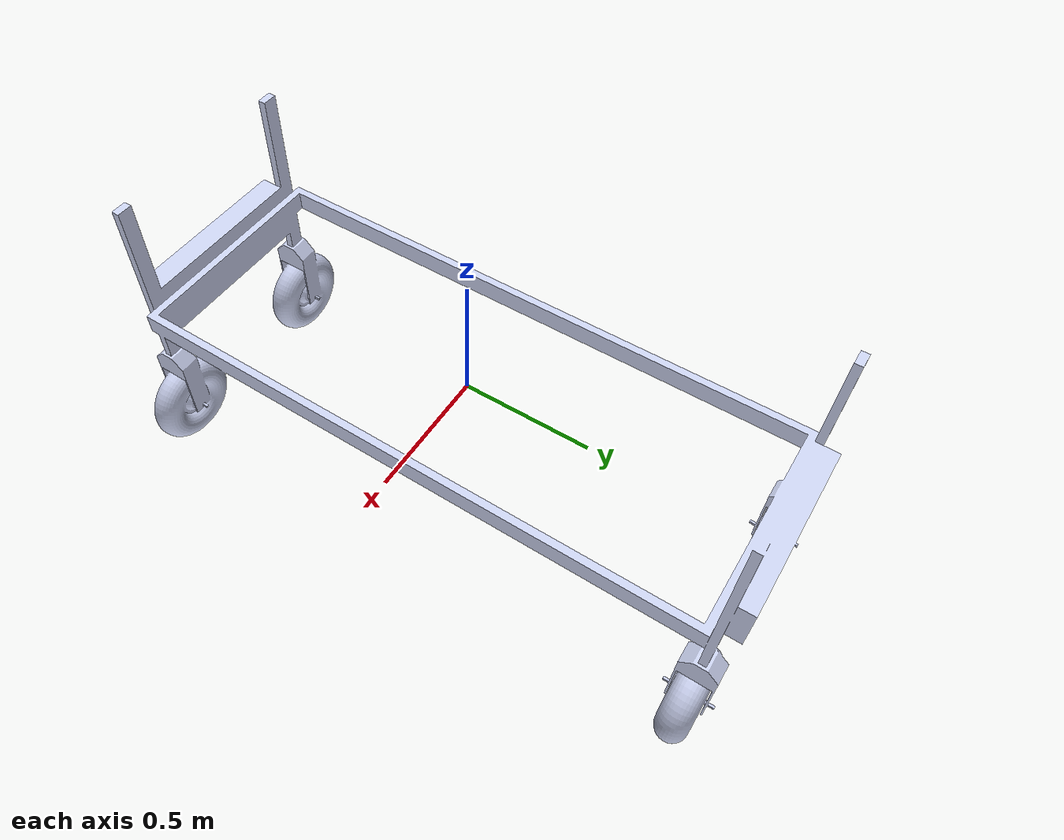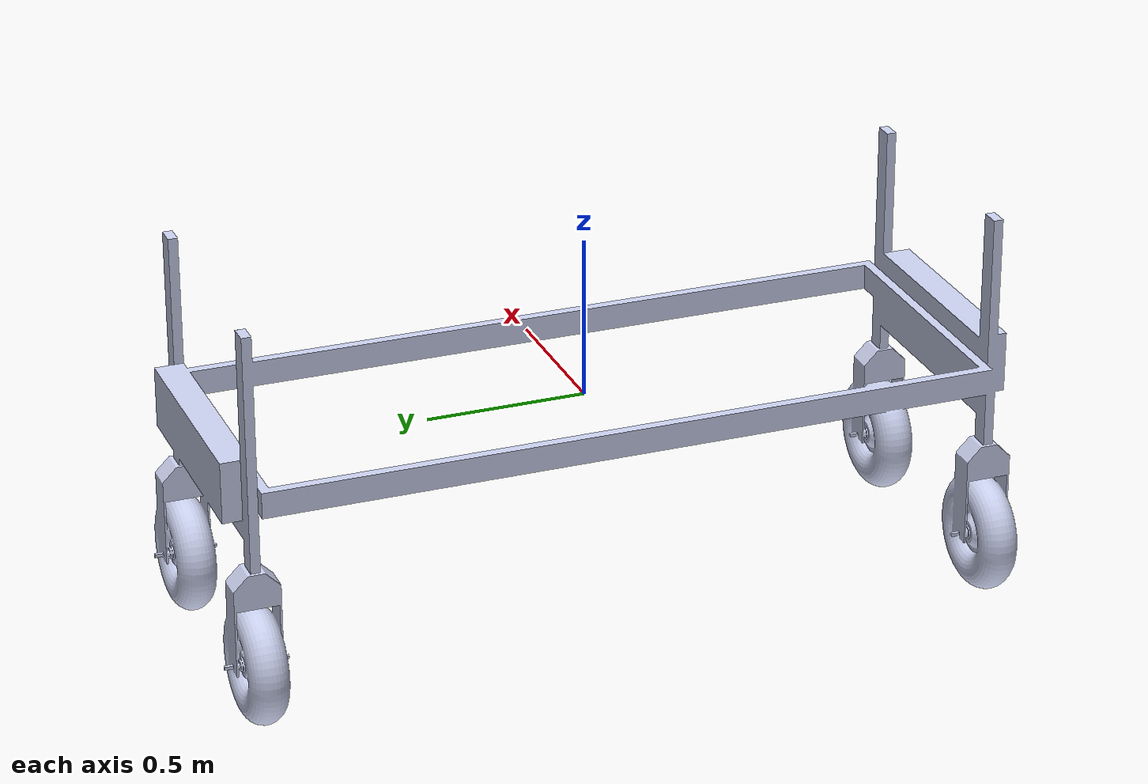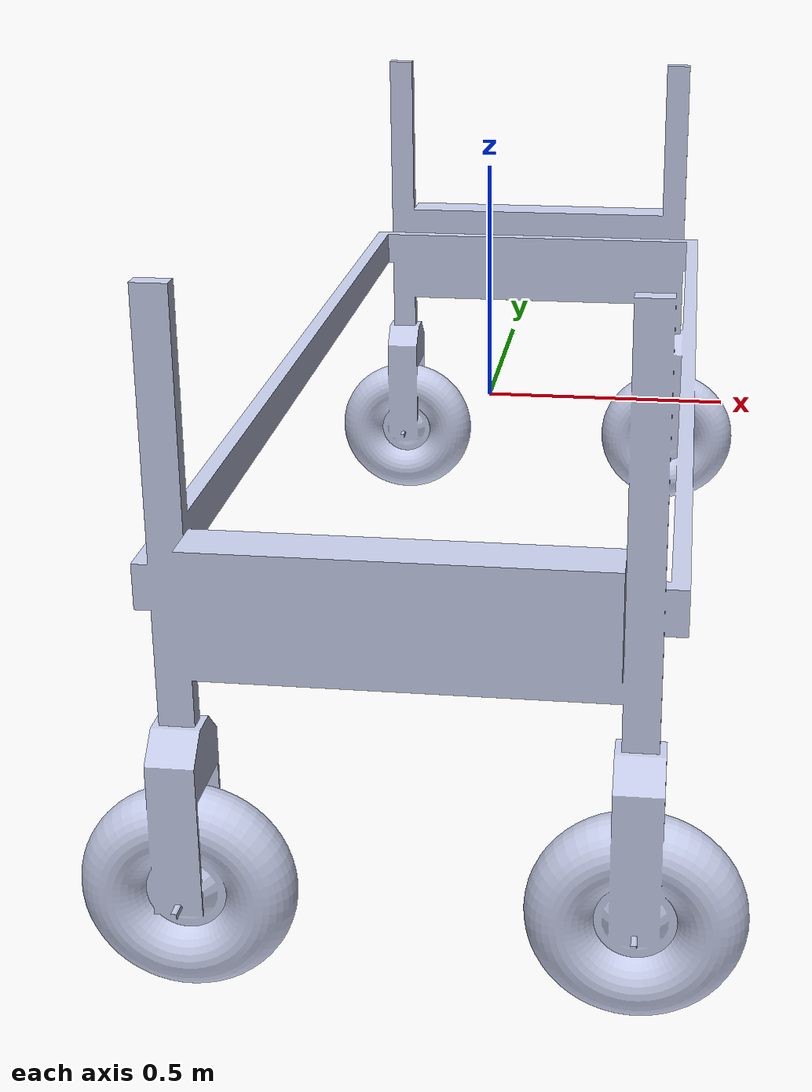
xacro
<?xml version="1.0" encoding="utf-8"?>
<robot
  name="aug_2024_bot">

  <material name="white">
    <color rgba="1 1 1 1"/>
  </material>

  <material name="black">
    <color rgba="0 0 0 1"/>
  </material>

  <material name="red">
    <color rgba="1 0 0 1"/>
  </material>

  <link name="base_link">
  </link>

  <joint name="chassis_joint" type="fixed">
    <origin
      xyz="0 0 0"
      rpy="0 0 0" />
    <parent
      link="base_link" />
    <child
      link="chassis_link" />
    <axis
      xyz="0 0 0" />
  </joint>

  <link name="chassis_link">
    <inertial>
      <origin
        xyz="8.8818E-16 -0.00019873 -0.21905"
        rpy="0 0 0" />
      <mass
        value="97.07" />
      <inertia
        ixx="63.032"
        ixy="2.6923E-13"
        ixz="5.5437E-14"
        iyy="6.512"
        iyz="-1.4703E-14"
        izz="66.796" />
    </inertial>
    <visual>
      <origin
        xyz="0 0 0"
        rpy="0 0 0" />
      <geometry>
        <mesh
          filename="file://$(find rowbot)/description/meshes/chassis_link.STL" />
      </geometry>
      <material
        name="">
        <color
          rgba="0.79216 0.81961 0.93333 1" />
      </material>
    </visual>
    <collision>
      <origin
        xyz="0 0 0"
        rpy="0 0 0" />
      <geometry>
        <mesh
          filename="file://$(find rowbot)/description/meshes/chassis_link.STL" />
      </geometry>
    </collision>
  </link>

  <gazebo reference="chassis_link">
    <material>Gazebo/White</material>
  </gazebo>

  <link name="front_left_wheel_link">
    <inertial>
      <origin
        xyz="1.4211E-14 -0.00042803 1.8208E-14"
        rpy="0 0 0" />
      <mass
        value="11.267" />
      <inertia
        ixx="0.10331"
        ixy="-2.557E-21"
        ixz="1.8542E-22"
        iyy="0.18708"
        iyz="2.8219E-16"
        izz="0.10331" />
    </inertial>
    <visual>
      <origin
        xyz="0 0 0"
        rpy="0 0 0" />
      <geometry>
        <mesh
          filename="file://$(find rowbot)/description/meshes/front_left_wheel_link.STL" />
      </geometry>
      <material
        name="">
        <color
          rgba="0.29804 0.29804 0.29804 1" />
      </material>
    </visual>
    <collision>
      <origin
        xyz="0 0 0"
        rpy="0 0 0" />
      <geometry>
        <mesh
          filename="file://$(find rowbot)/description/meshes/front_left_wheel_link.STL" />
      </geometry>
    </collision>
  </link>

  <joint name="front_left_wheel_joint" type="continuous">
    <origin
      xyz="0.37385 1.1617 -0.49585"
      rpy="0 0 0" />
    <parent
      link="chassis_link" />
    <child
      link="front_left_wheel_link" />
    <axis
      xyz="0 1 0" />
  </joint>

  <gazebo reference="front_left_wheel_link">
    <material>Gazebo/Black</material>
  </gazebo>

  <link name="front_right_wheel_link">
    <inertial>
      <origin
        xyz="7.9936E-15 -0.00042803 1.0436E-14"
        rpy="0 0 0" />
      <mass
        value="11.267" />
      <inertia
        ixx="0.10331"
        ixy="-2.505E-21"
        ixz="1.7903E-22"
        iyy="0.18708"
        iyz="2.8222E-16"
        izz="0.10331" />
    </inertial>
    <visual>
      <origin
        xyz="0 0 0"
        rpy="0 0 0" />
      <geometry>
        <mesh
          filename="file://$(find rowbot)/description/meshes/front_right_wheel_link.STL" />
      </geometry>
      <material
        name="">
        <color
          rgba="0.29804 0.29804 0.29804 1" />
      </material>
    </visual>
    <collision>
      <origin
        xyz="0 0 0"
        rpy="0 0 0" />
      <geometry>
        <mesh
          filename="file://$(find rowbot)/description/meshes/front_right_wheel_link.STL" />
      </geometry>
    </collision>
  </link>

  <joint name="front_right_wheel_joint" type="continuous">
    <origin
      xyz="0.37385 -1.1617 -0.49585"
      rpy="0 0 0" />
    <parent
      link="chassis_link" />
    <child
      link="front_right_wheel_link" />
    <axis
      xyz="0 1 0" />
  </joint>

  <gazebo reference="front_right_wheel_link">
    <material>Gazebo/Black</material>
  </gazebo>

  <link name="rear_left_wheel_link">
    <inertial>
      <origin
        xyz="1.2434E-14 -0.00042803 1.8097E-14"
        rpy="0 0 0" />
      <mass
        value="11.267" />
      <inertia
        ixx="0.10331"
        ixy="-2.6595E-21"
        ixz="1.905E-22"
        iyy="0.18708"
        iyz="2.8219E-16"
        izz="0.10331" />
    </inertial>
    <visual>
      <origin
        xyz="0 0 0"
        rpy="0 0 0" />
      <geometry>
        <mesh
          filename="file://$(find rowbot)/description/meshes/rear_left_wheel_link.STL" />
      </geometry>
      <material
        name="">
        <color
          rgba="0.29804 0.29804 0.29804 1" />
      </material>
    </visual>
    <collision>
      <origin
        xyz="0 0 0"
        rpy="0 0 0" />
      <geometry>
        <mesh
          filename="file://$(find rowbot)/description/meshes/rear_left_wheel_link.STL" />
      </geometry>
    </collision>
  </link>

  <joint name="rear_left_wheel_joint" type="continuous">
    <origin
      xyz="-0.37385 1.1617 -0.49585"
      rpy="0 0 0" />
    <parent
      link="chassis_link" />
    <child
      link="rear_left_wheel_link" />
    <axis
      xyz="0 1 0" />
  </joint>

  <gazebo reference="rear_left_wheel_link">
    <material>Gazebo/Black</material>
  </gazebo>

  <link name="rear_right_wheel_link">
    <inertial>
      <origin
        xyz="7.1054E-15 -0.00042803 1.0436E-14"
        rpy="0 0 0" />
      <mass
        value="11.267" />
      <inertia
        ixx="0.10331"
        ixy="-2.6353E-21"
        ixz="1.8283E-22"
        iyy="0.18708"
        iyz="2.8222E-16"
        izz="0.10331" />
    </inertial>
    <visual>
      <origin
        xyz="0 0 0"
        rpy="0 0 0" />
      <geometry>
        <mesh
          filename="file://$(find rowbot)/description/meshes/rear_right_wheel_link.STL" />
      </geometry>
      <material
        name="">
        <color
          rgba="0.29804 0.29804 0.29804 1" />
      </material>
    </visual>
    <collision>
      <origin
        xyz="0 0 0"
        rpy="0 0 0" />
      <geometry>
        <mesh
          filename="file://$(find rowbot)/description/meshes/rear_right_wheel_link.STL" />
      </geometry>
    </collision>
  </link>

  <joint name="rear_right_wheel_joint" type="continuous">
    <origin
      xyz="-0.37385 -1.1617 -0.49585"
      rpy="0 0 0" />
    <parent
      link="chassis_link" />
    <child
      link="rear_right_wheel_link" />
    <axis
      xyz="0 1 0" />
  </joint>

  <gazebo reference="rear_right_wheel_link">
    <material>Gazebo/Black</material>
  </gazebo>

</robot>
